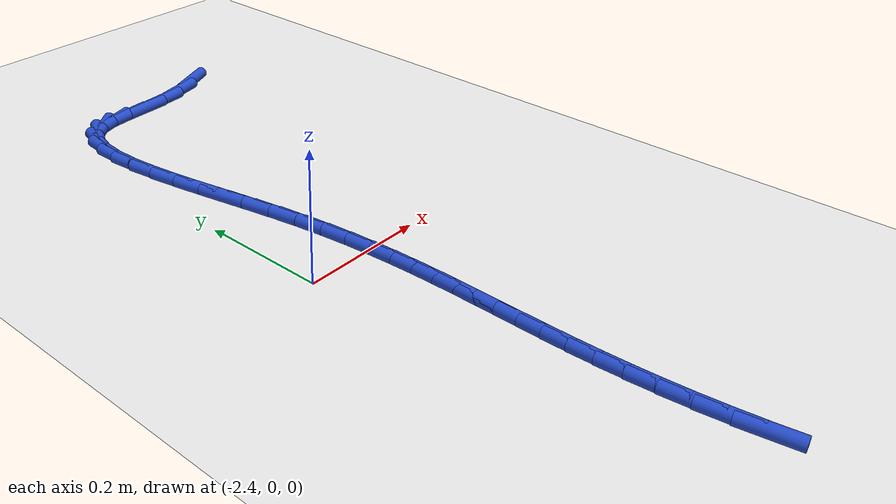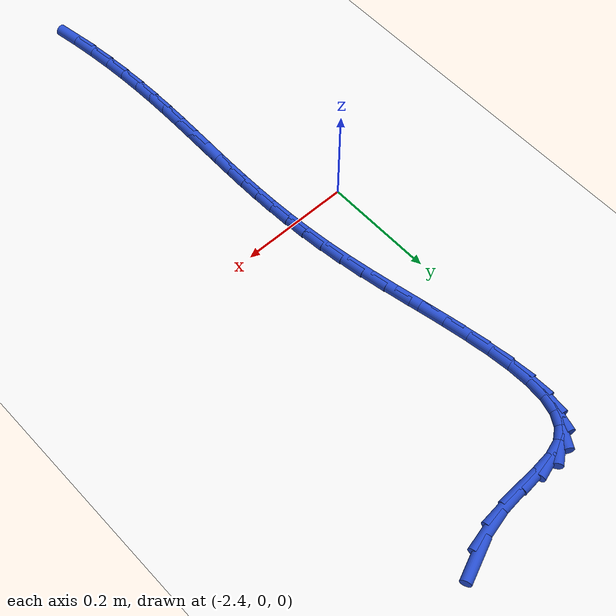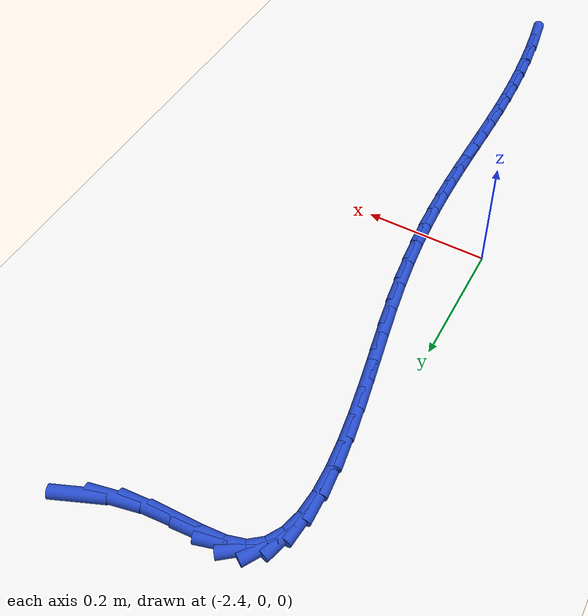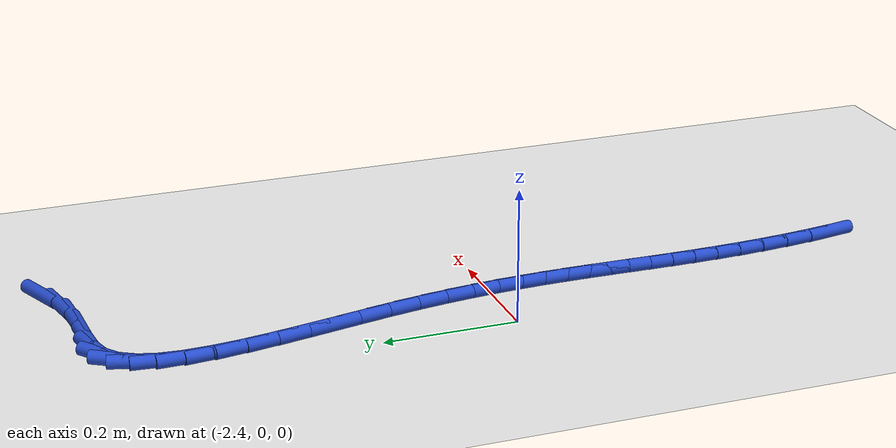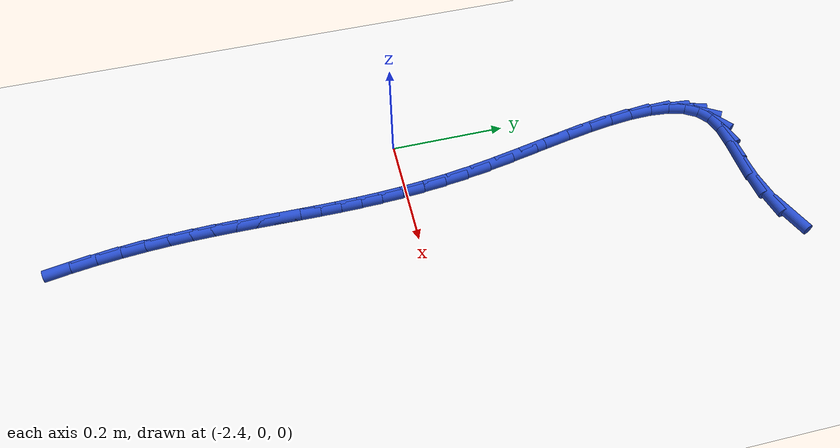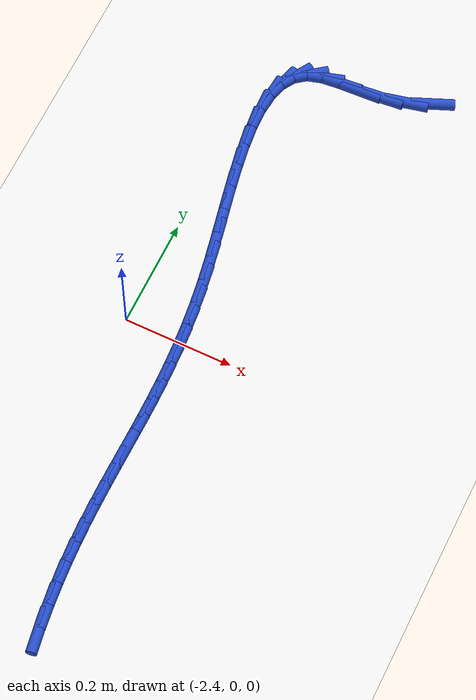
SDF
<sdf version="1.6">
 <world name="default">
  <model name="ground_plane">
   <static>1</static>
   <link name="link">
    <collision name="collision">
     <geometry><plane><normal>0 0 1</normal><size>100 100</size></plane></geometry>
     <surface><friction><ode><mu>100</mu><mu2>50</mu2></ode></friction></surface>
    </collision>
    <visual name="visual">
     <cast_shadows>0</cast_shadows>
     <geometry><plane><normal>0 0 1</normal><size>100 100</size></plane></geometry>
     <material>
      <script><uri>file://media/materials/scripts/gazebo.material</uri><name>Gazebo/WhiteGlow</name></script>
     </material>
    </visual>
   </link>
  </model>
  <model name="line">
   <link name="link_92">
    <pose>-2.0939272164921316 0.619168346338157 0.01 0 1.57 0.3917815000676829</pose>
    <collision name="collision">
     <geometry><cylinder><radius>0.01</radius><length>0.08</length></cylinder></geometry>
    </collision>
    <visual name="visual">
     <material>
      <script><name>Gazebo/Blue</name><uri>file://media/materials/scripts/gazebo.material</uri></script>
     </material>
     <geometry><cylinder><radius>0.01</radius><length>0.08</length></cylinder></geometry>
    </visual>
   </link>
   <link name="link_93">
    <pose>-2.1380062243253737 0.6009575910272587 0.01 0 1.57 0.21662194578853938</pose>
    <collision name="collision">
     <geometry><cylinder><radius>0.01</radius><length>0.08</length></cylinder></geometry>
    </collision>
    <visual name="visual">
     <material>
      <script><name>Gazebo/Blue</name><uri>file://media/materials/scripts/gazebo.material</uri></script>
     </material>
     <geometry><cylinder><radius>0.01</radius><length>0.08</length></cylinder></geometry>
    </visual>
   </link>
   <link name="link_94">
    <pose>-2.1816421946187505 0.5913544000906581 0.01 0 1.57 0.08902801306700409</pose>
    <collision name="collision">
     <geometry><cylinder><radius>0.01</radius><length>0.08</length></cylinder></geometry>
    </collision>
    <visual name="visual">
     <material>
      <script><name>Gazebo/Blue</name><uri>file://media/materials/scripts/gazebo.material</uri></script>
     </material>
     <geometry><cylinder><radius>0.01</radius><length>0.08</length></cylinder></geometry>
    </visual>
   </link>
   <link name="link_95">
    <pose>-2.2235326101383737 0.5876150951787644 0.01 0 1.57 0.03968988690827943</pose>
    <collision name="collision">
     <geometry><cylinder><radius>0.01</radius><length>0.08</length></cylinder></geometry>
    </collision>
    <visual name="visual">
     <material>
      <script><name>Gazebo/Blue</name><uri>file://media/materials/scripts/gazebo.material</uri></script>
     </material>
     <geometry><cylinder><radius>0.01</radius><length>0.08</length></cylinder></geometry>
    </visual>
   </link>
   <link name="link_96">
    <pose>-2.2621656536719836 0.5860809483914866 0.01 0 1.57 0.08800049731571433</pose>
    <collision name="collision">
     <geometry><cylinder><radius>0.01</radius><length>0.08</length></cylinder></geometry>
    </collision>
    <visual name="visual">
     <material>
      <script><name>Gazebo/Blue</name><uri>file://media/materials/scripts/gazebo.material</uri></script>
     </material>
     <geometry><cylinder><radius>0.01</radius><length>0.08</length></cylinder></geometry>
    </visual>
   </link>
   <link name="link_97">
    <pose>-2.2960294999545776 0.5830931966225167 0.01 0 1.57 0.2855106294084926</pose>
    <collision name="collision">
     <geometry><cylinder><radius>0.01</radius><length>0.08</length></cylinder></geometry>
    </collision>
    <visual name="visual">
     <material>
      <script><name>Gazebo/Blue</name><uri>file://media/materials/scripts/gazebo.material</uri></script>
     </material>
     <geometry><cylinder><radius>0.01</radius><length>0.08</length></cylinder></geometry>
    </visual>
   </link>
   <link name="link_98">
    <pose>-2.3236139741134867 0.574996321920958 0.01 0 1.57 0.655510725097117</pose>
    <collision name="collision">
     <geometry><cylinder><radius>0.01</radius><length>0.08</length></cylinder></geometry>
    </collision>
    <visual name="visual">
     <material>
      <script><name>Gazebo/Blue</name><uri>file://media/materials/scripts/gazebo.material</uri></script>
     </material>
     <geometry><cylinder><radius>0.01</radius><length>0.08</length></cylinder></geometry>
    </visual>
   </link>
   <link name="link_99">
    <pose>-2.3440086583959063 0.5593141047503227 0.01 0 1.57 1.0273787780815482</pose>
    <collision name="collision">
     <geometry><cylinder><radius>0.01</radius><length>0.08</length></cylinder></geometry>
    </collision>
    <visual name="visual">
     <material>
      <script><name>Gazebo/Blue</name><uri>file://media/materials/scripts/gazebo.material</uri></script>
     </material>
     <geometry><cylinder><radius>0.01</radius><length>0.08</length></cylinder></geometry>
    </visual>
   </link>
   <link name="link_100">
    <pose>-2.3577918155169475 0.5364975080238618 0.01 0 1.57 1.3028400302083762</pose>
    <collision name="collision">
     <geometry><cylinder><radius>0.01</radius><length>0.08</length></cylinder></geometry>
    </collision>
    <visual name="visual">
     <material>
      <script><name>Gazebo/Blue</name><uri>file://media/materials/scripts/gazebo.material</uri></script>
     </material>
     <geometry><cylinder><radius>0.01</radius><length>0.08</length></cylinder></geometry>
    </visual>
   </link>
   <link name="link_101">
    <pose>-2.365768744827835 0.5074439152743029 0.01 0 1.57 1.4844825711561556</pose>
    <collision name="collision">
     <geometry><cylinder><radius>0.01</radius><length>0.08</length></cylinder></geometry>
    </collision>
    <visual name="visual">
     <material>
      <script><name>Gazebo/Blue</name><uri>file://media/materials/scripts/gazebo.material</uri></script>
     </material>
     <geometry><cylinder><radius>0.01</radius><length>0.08</length></cylinder></geometry>
    </visual>
   </link>
   <link name="link_102">
    <pose>-2.3687447456797965 0.47305071003437305 0.01 0 1.57 -1.5394016081691229</pose>
    <collision name="collision">
     <geometry><cylinder><radius>0.01</radius><length>0.08</length></cylinder></geometry>
    </collision>
    <visual name="visual">
     <material>
      <script><name>Gazebo/Blue</name><uri>file://media/materials/scripts/gazebo.material</uri></script>
     </material>
     <geometry><cylinder><radius>0.01</radius><length>0.08</length></cylinder></geometry>
    </visual>
   </link>
   <link name="link_103">
    <pose>-2.3675251174240572 0.4342152758368006 0.01 0 1.57 -1.4624463103013523</pose>
    <collision name="collision">
     <geometry><cylinder><radius>0.01</radius><length>0.08</length></cylinder></geometry>
    </collision>
    <visual name="visual">
     <material>
      <script><name>Gazebo/Blue</name><uri>file://media/materials/scripts/gazebo.material</uri></script>
     </material>
     <geometry><cylinder><radius>0.01</radius><length>0.08</length></cylinder></geometry>
    </visual>
   </link>
   <link name="link_104">
    <pose>-2.362915159411845 0.39183499621431206 0.01 0 1.57 -1.412345708214995</pose>
    <collision name="collision">
     <geometry><cylinder><radius>0.01</radius><length>0.08</length></cylinder></geometry>
    </collision>
    <visual name="visual">
     <material>
      <script><name>Gazebo/Blue</name><uri>file://media/materials/scripts/gazebo.material</uri></script>
     </material>
     <geometry><cylinder><radius>0.01</radius><length>0.08</length></cylinder></geometry>
    </visual>
   </link>
   <link name="link_105">
    <pose>-2.3557201709943856 0.346807254699636 0.01 0 1.57 -1.3812413069873881</pose>
    <collision name="collision">
     <geometry><cylinder><radius>0.01</radius><length>0.08</length></cylinder></geometry>
    </collision>
    <visual name="visual">
     <material>
      <script><name>Gazebo/Blue</name><uri>file://media/materials/scripts/gazebo.material</uri></script>
     </material>
     <geometry><cylinder><radius>0.01</radius><length>0.08</length></cylinder></geometry>
    </visual>
   </link>
   <link name="link_106">
    <pose>-2.3467454515229056 0.30002943482549915 0.01 0 1.57 -1.3648752723121726</pose>
    <collision name="collision">
     <geometry><cylinder><radius>0.01</radius><length>0.08</length></cylinder></geometry>
    </collision>
    <visual name="visual">
     <material>
      <script><name>Gazebo/Blue</name><uri>file://media/materials/scripts/gazebo.material</uri></script>
     </material>
     <geometry><cylinder><radius>0.01</radius><length>0.08</length></cylinder></geometry>
    </visual>
   </link>
   <link name="link_107">
    <pose>-2.336796300348632 0.25239892012462994 0.01 0 1.57 -1.361284355371029</pose>
    <collision name="collision">
     <geometry><cylinder><radius>0.01</radius><length>0.08</length></cylinder></geometry>
    </collision>
    <visual name="visual">
     <material>
      <script><name>Gazebo/Blue</name><uri>file://media/materials/scripts/gazebo.material</uri></script>
     </material>
     <geometry><cylinder><radius>0.01</radius><length>0.08</length></cylinder></geometry>
    </visual>
   </link>
   <link name="link_108">
    <pose>-2.3266780168227905 0.20481309412975496 0.01 0 1.57 -1.370241213892328</pose>
    <collision name="collision">
     <geometry><cylinder><radius>0.01</radius><length>0.08</length></cylinder></geometry>
    </collision>
    <visual name="visual">
     <material>
      <script><name>Gazebo/Blue</name><uri>file://media/materials/scripts/gazebo.material</uri></script>
     </material>
     <geometry><cylinder><radius>0.01</radius><length>0.08</length></cylinder></geometry>
    </visual>
   </link>
   <link name="link_109">
    <pose>-2.3171959002966087 0.15816934037360275 0.01 0 1.57 -1.392762880900012</pose>
    <collision name="collision">
     <geometry><cylinder><radius>0.01</radius><length>0.08</length></cylinder></geometry>
    </collision>
    <visual name="visual">
     <material>
      <script><name>Gazebo/Blue</name><uri>file://media/materials/scripts/gazebo.material</uri></script>
     </material>
     <geometry><cylinder><radius>0.01</radius><length>0.08</length></cylinder></geometry>
    </visual>
   </link>
   <link name="link_110">
    <pose>-2.309128303201813 0.11333405791061368 0.01 0 1.57 -1.4226489164793896</pose>
    <collision name="collision">
     <geometry><cylinder><radius>0.01</radius><length>0.08</length></cylinder></geometry>
    </collision>
    <visual name="visual">
     <material>
      <script><name>Gazebo/Blue</name><uri>file://media/materials/scripts/gazebo.material</uri></script>
     </material>
     <geometry><cylinder><radius>0.01</radius><length>0.08</length></cylinder></geometry>
    </visual>
   </link>
   <link name="link_111">
    <pose>-2.3027497981822593 0.07059438277785136 0.01 0 1.57 -1.4524030938197632</pose>
    <collision name="collision">
     <geometry><cylinder><radius>0.01</radius><length>0.08</length></cylinder></geometry>
    </collision>
    <visual name="visual">
     <material>
      <script><name>Gazebo/Blue</name><uri>file://media/materials/scripts/gazebo.material</uri></script>
     </material>
     <geometry><cylinder><radius>0.01</radius><length>0.08</length></cylinder></geometry>
    </visual>
   </link>
   <link name="link_112">
    <pose>-2.297888265270515 0.029723828758995163 0.01 0 1.57 -1.4810370397121342</pose>
    <collision name="collision">
     <geometry><cylinder><radius>0.01</radius><length>0.08</length></cylinder></geometry>
    </collision>
    <visual name="visual">
     <material>
      <script><name>Gazebo/Blue</name><uri>file://media/materials/scripts/gazebo.material</uri></script>
     </material>
     <geometry><cylinder><radius>0.01</radius><length>0.08</length></cylinder></geometry>
    </visual>
   </link>
   <link name="link_113">
    <pose>-2.2943561068102905 -0.009521887131749451 0.01 0 1.57 -1.5077512011095113</pose>
    <collision name="collision">
     <geometry><cylinder><radius>0.01</radius><length>0.08</length></cylinder></geometry>
    </collision>
    <visual name="visual">
     <material>
      <script><name>Gazebo/Blue</name><uri>file://media/materials/scripts/gazebo.material</uri></script>
     </material>
     <geometry><cylinder><radius>0.01</radius><length>0.08</length></cylinder></geometry>
    </visual>
   </link>
   <link name="link_114">
    <pose>-2.2919657251452947 -0.047387047880177856 0.01 0 1.57 -1.53171343446298</pose>
    <collision name="collision">
     <geometry><cylinder><radius>0.01</radius><length>0.08</length></cylinder></geometry>
    </collision>
    <visual name="visual">
     <material>
      <script><name>Gazebo/Blue</name><uri>file://media/materials/scripts/gazebo.material</uri></script>
     </material>
     <geometry><cylinder><radius>0.01</radius><length>0.08</length></cylinder></geometry>
    </visual>
   </link>
   <link name="link_115">
    <pose>-2.290529522619236 -0.08411593647208276 0.01 0 1.57 -1.552113261561612</pose>
    <collision name="collision">
     <geometry><cylinder><radius>0.01</radius><length>0.08</length></cylinder></geometry>
    </collision>
    <visual name="visual">
     <material>
      <script><name>Gazebo/Blue</name><uri>file://media/materials/scripts/gazebo.material</uri></script>
     </material>
     <geometry><cylinder><radius>0.01</radius><length>0.08</length></cylinder></geometry>
    </visual>
   </link>
   <link name="link_116">
    <pose>-2.289859901575824 -0.11995283589325957 0.01 0 1.57 -1.5682206207816733</pose>
    <collision name="collision">
     <geometry><cylinder><radius>0.01</radius><length>0.08</length></cylinder></geometry>
    </collision>
    <visual name="visual">
     <material>
      <script><name>Gazebo/Blue</name><uri>file://media/materials/scripts/gazebo.material</uri></script>
     </material>
     <geometry><cylinder><radius>0.01</radius><length>0.08</length></cylinder></geometry>
    </visual>
   </link>
   <link name="link_117">
    <pose>-2.289769264358768 -0.15514202912950273 0.01 0 1.57 1.562150795605855</pose>
    <collision name="collision">
     <geometry><cylinder><radius>0.01</radius><length>0.08</length></cylinder></geometry>
    </collision>
    <visual name="visual">
     <material>
      <script><name>Gazebo/Blue</name><uri>file://media/materials/scripts/gazebo.material</uri></script>
     </material>
     <geometry><cylinder><radius>0.01</radius><length>0.08</length></cylinder></geometry>
    </visual>
   </link>
   <link name="link_118">
    <pose>-2.290070013311777 -0.1899277991666078 0.01 0 1.57 1.5562265645016673</pose>
    <collision name="collision">
     <geometry><cylinder><radius>0.01</radius><length>0.08</length></cylinder></geometry>
    </collision>
    <visual name="visual">
     <material>
      <script><name>Gazebo/Blue</name><uri>file://media/materials/scripts/gazebo.material</uri></script>
     </material>
     <geometry><cylinder><radius>0.01</radius><length>0.08</length></cylinder></geometry>
    </visual>
   </link>
   <link name="link_119">
    <pose>-2.2905745507785604 -0.22455442899036737 0.01 0 1.57 1.5557959615525192</pose>
    <collision name="collision">
     <geometry><cylinder><radius>0.01</radius><length>0.08</length></cylinder></geometry>
    </collision>
    <visual name="visual">
     <material>
      <script><name>Gazebo/Blue</name><uri>file://media/materials/scripts/gazebo.material</uri></script>
     </material>
     <geometry><cylinder><radius>0.01</radius><length>0.08</length></cylinder></geometry>
    </visual>
   </link>
   <link name="link_120">
    <pose>-2.291095279102826 -0.25926620158657687 0.01 0 1.57 1.560827776321166</pose>
    <collision name="collision">
     <geometry><cylinder><radius>0.01</radius><length>0.08</length></cylinder></geometry>
    </collision>
    <visual name="visual">
     <material>
      <script><name>Gazebo/Blue</name><uri>file://media/materials/scripts/gazebo.material</uri></script>
     </material>
     <geometry><cylinder><radius>0.01</radius><length>0.08</length></cylinder></geometry>
    </visual>
   </link>
   <link name="link_121">
    <pose>-2.291444600628285 -0.29430739994103094 0.01 0 1.57 -1.5705244482420615</pose>
    <collision name="collision">
     <geometry><cylinder><radius>0.01</radius><length>0.08</length></cylinder></geometry>
    </collision>
    <visual name="visual">
     <material>
      <script><name>Gazebo/Blue</name><uri>file://media/materials/scripts/gazebo.material</uri></script>
     </material>
     <geometry><cylinder><radius>0.01</radius><length>0.08</length></cylinder></geometry>
    </visual>
   </link>
   <link name="link_122">
    <pose>-2.2914349176986453 -0.32992230703952485 0.01 0 1.57 -1.555528757231592</pose>
    <collision name="collision">
     <geometry><cylinder><radius>0.01</radius><length>0.08</length></cylinder></geometry>
    </collision>
    <visual name="visual">
     <material>
      <script><name>Gazebo/Blue</name><uri>file://media/materials/scripts/gazebo.material</uri></script>
     </material>
     <geometry><cylinder><radius>0.01</radius><length>0.08</length></cylinder></geometry>
    </visual>
   </link>
   <link name="link_123">
    <pose>-2.2908786326576163 -0.36635520586785125 0.01 0 1.57 -1.536392548954773</pose>
    <collision name="collision">
     <geometry><cylinder><radius>0.01</radius><length>0.08</length></cylinder></geometry>
    </collision>
    <visual name="visual">
     <material>
      <script><name>Gazebo/Blue</name><uri>file://media/materials/scripts/gazebo.material</uri></script>
     </material>
     <geometry><cylinder><radius>0.01</radius><length>0.08</length></cylinder></geometry>
    </visual>
   </link>
   <link name="link_124">
    <pose>-2.2895881478489066 -0.40385037941180574 0.01 0 1.57 -1.5138429471313024</pose>
    <collision name="collision">
     <geometry><cylinder><radius>0.01</radius><length>0.08</length></cylinder></geometry>
    </collision>
    <visual name="visual">
     <material>
      <script><name>Gazebo/Blue</name><uri>file://media/materials/scripts/gazebo.material</uri></script>
     </material>
     <geometry><cylinder><radius>0.01</radius><length>0.08</length></cylinder></geometry>
    </visual>
   </link>
   <link name="link_125">
    <pose>-2.2873758656162257 -0.4426521106571827 0.01 0 1.57 -1.4886651276084075</pose>
    <collision name="collision">
     <geometry><cylinder><radius>0.01</radius><length>0.08</length></cylinder></geometry>
    </collision>
    <visual name="visual">
     <material>
      <script><name>Gazebo/Blue</name><uri>file://media/materials/scripts/gazebo.material</uri></script>
     </material>
     <geometry><cylinder><radius>0.01</radius><length>0.08</length></cylinder></geometry>
    </visual>
   </link>
   <link name="link_126">
    <pose>-2.2840541883032834 -0.4830046825897776 0.01 0 1.57 -1.461648853879048</pose>
    <collision name="collision">
     <geometry><cylinder><radius>0.01</radius><length>0.08</length></cylinder></geometry>
    </collision>
    <visual name="visual">
     <material>
      <script><name>Gazebo/Blue</name><uri>file://media/materials/scripts/gazebo.material</uri></script>
     </material>
     <geometry><cylinder><radius>0.01</radius><length>0.08</length></cylinder></geometry>
    </visual>
   </link>
   <link name="link_127">
    <pose>-2.279435518253801 -0.5251523781947817 0.01 0 1.57 -1.4330497458046294</pose>
    <collision name="collision">
     <geometry><cylinder><radius>0.01</radius><length>0.08</length></cylinder></geometry>
    </collision>
    <visual name="visual">
     <material>
      <script><name>Gazebo/Blue</name><uri>file://media/materials/scripts/gazebo.material</uri></script>
     </material>
     <geometry><cylinder><radius>0.01</radius><length>0.08</length></cylinder></geometry>
    </visual>
   </link>
   <link name="link_128">
    <pose>-2.273336476227308 -0.5691492487303296 0.01 0 1.57 -1.4008614704506326</pose>
    <collision name="collision">
     <geometry><cylinder><radius>0.01</radius><length>0.08</length></cylinder></geometry>
    </collision>
    <visual name="visual">
     <material>
      <script><name>Gazebo/Blue</name><uri>file://media/materials/scripts/gazebo.material</uri></script>
     </material>
     <geometry><cylinder><radius>0.01</radius><length>0.08</length></cylinder></geometry>
    </visual>
   </link>
  </model>
 </world>
</sdf>
